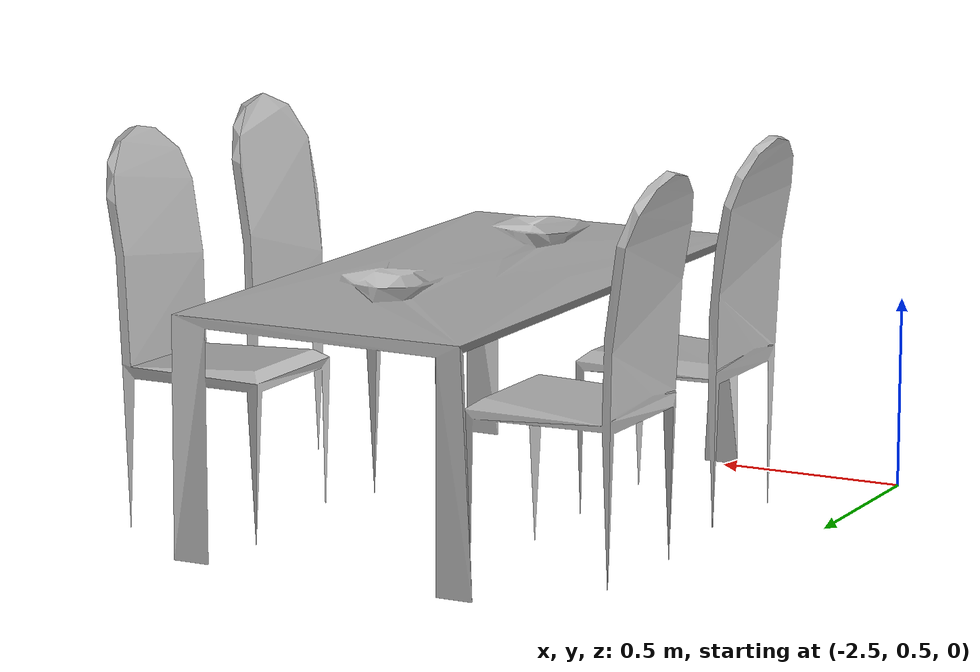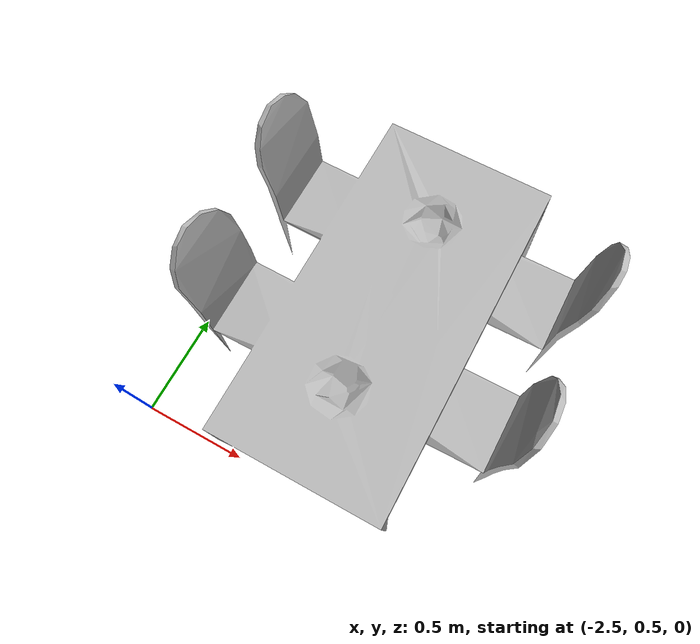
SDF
<?xml version="1.0" ?>
<sdf version="1.5">
  <model name="unit-table">
    <static>true</static>
    <link name="link">
      <collision name='collision'>
            <pose>-1.655 1.25 0.323 0 0 0 0</pose>
            <geometry>
              <box>
              <size>1.51 1.57 0.616</size>
            </box>
          </geometry>
      </collision>
      <visual name="visual">
        <cast_shadows>true</cast_shadows>
        <pose>0.0 0.0 0.015 0 0 0 0</pose>
        <geometry>
            <mesh>
                <uri>model://table/meshes/table.dae</uri>
            </mesh>
        </geometry>
      </visual>
    </link>
  </model>
</sdf>
